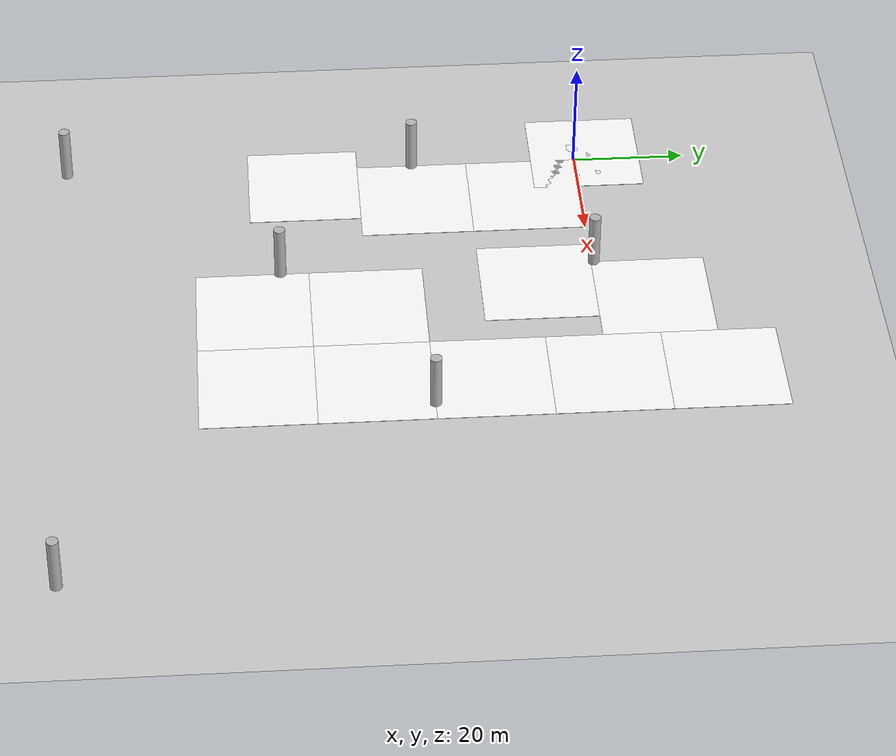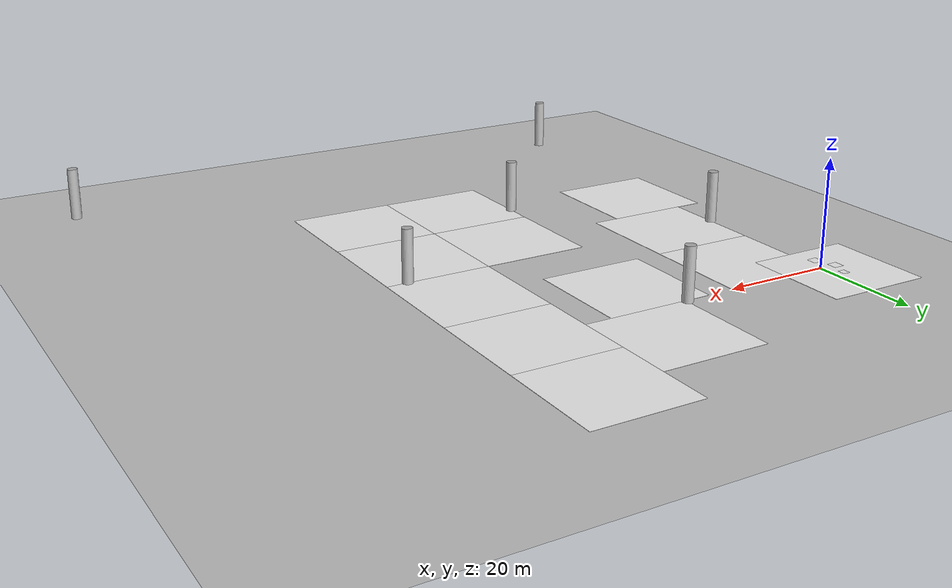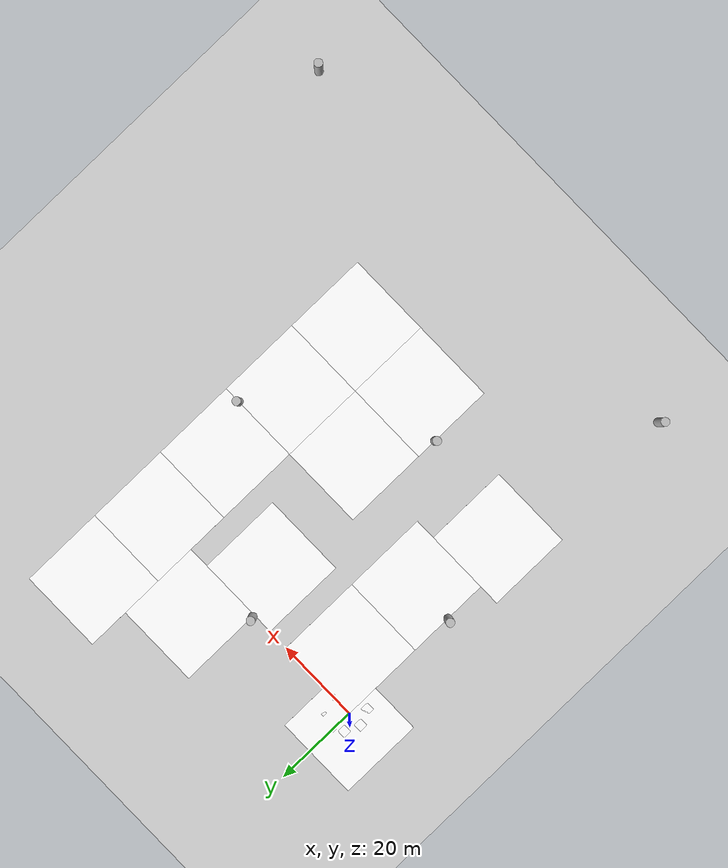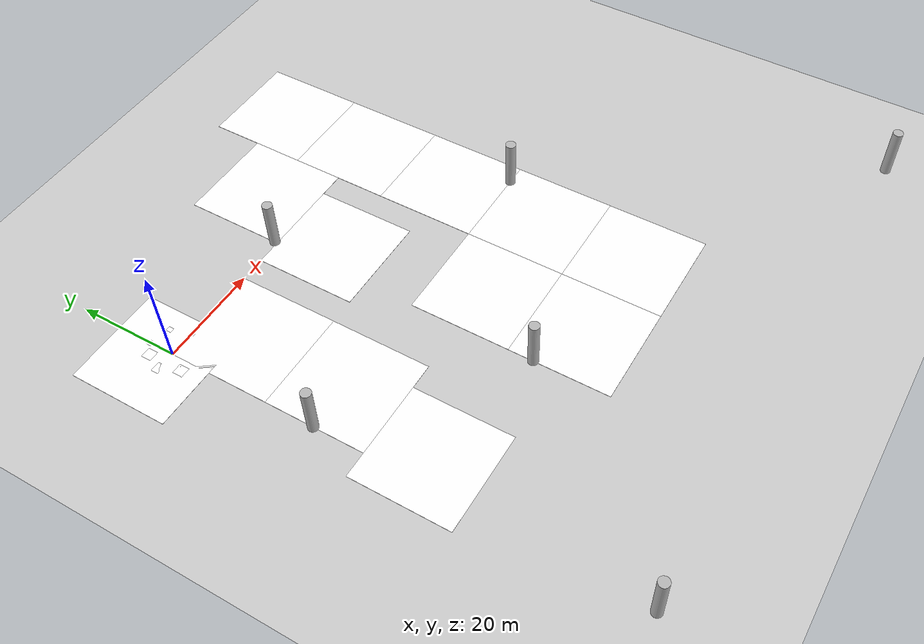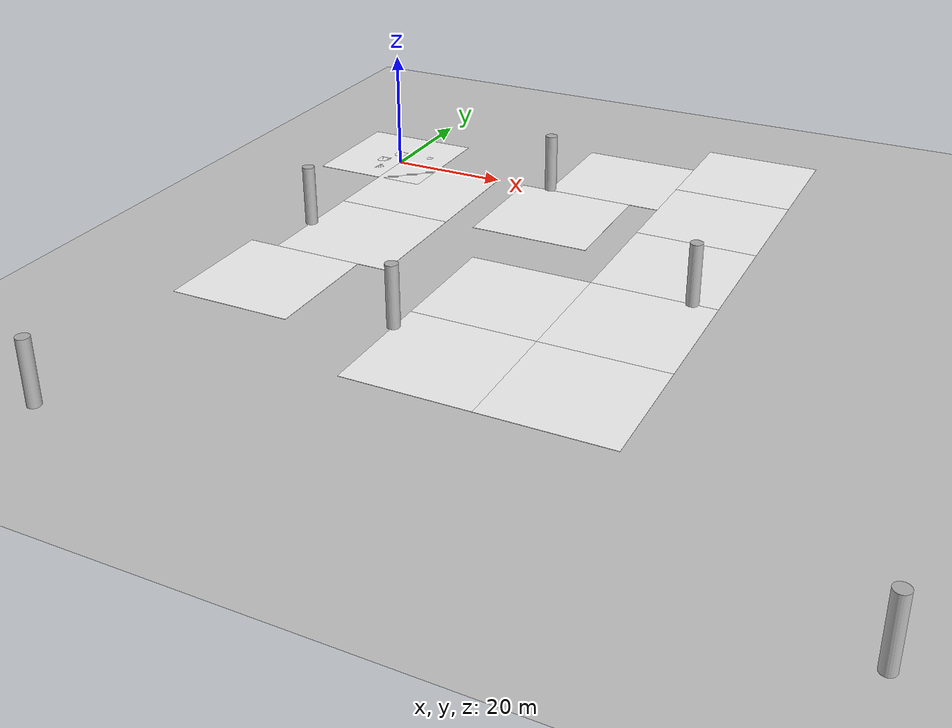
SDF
<sdf version="1.6">
 <world name="default">
  <physics type="ode">
   <real_time_factor>1</real_time_factor>
   <ode>
    <solver><type>quick</type><iters>100</iters><sor>1.0</sor></solver>
    <constraints>
     <cfm>0.0</cfm>
     <erp>0.2</erp>
     <contact_max_correcting_vel>0.1</contact_max_correcting_vel>
     <contact_surface_layer>0.0</contact_surface_layer>
    </constraints>
   </ode>
   <real_time_update_rate>0</real_time_update_rate>
   <max_step_size>0.0020</max_step_size>
  </physics>
  <gravity>0 0 -9.8</gravity>
  <include><uri>model://sun</uri><pose>0 0 0 0 1 1</pose></include>
  <model name="ground_plane">
   <static>true</static>
   <link name="link">
    <collision name="collision">
     <geometry><plane><normal>0 0 1</normal><size>500 250</size></plane></geometry>
     <surface><friction><ode><mu>100</mu><mu2>50</mu2></ode></friction></surface>
    </collision>
    <visual name="runway">
     <pose>000 0 0.004 0 0 0</pose>
     <cast_shadows>false</cast_shadows>
     <geometry><plane><normal>0 0 1</normal><size>400 45</size></plane></geometry>
     <material>
      <script><uri>file://media/materials/scripts/gazebo.material</uri><name>Gazebo/Runway</name></script>
     </material>
    </visual>
    <visual name="playground">
     <pose>000 0 0.009 0 0 0</pose>
     <cast_shadows>false</cast_shadows>
     <geometry><plane><normal>0 0 1</normal><size>10 5</size></plane></geometry>
     <material>
      <script><uri>file://media/materials/scripts/gazebo.material</uri><name>Gazebo/WoodFloor</name></script>
     </material>
    </visual>
    <visual name="grass">
     <pose>0 0 -0.1 0 0 0</pose>
     <cast_shadows>false</cast_shadows>
     <geometry><plane><normal>0 0 1</normal><size>500 250</size></plane></geometry>
     <material>
      <script><uri>file://media/materials/scripts/gazebo.material</uri><name>Gazebo/Grass</name></script>
     </material>
    </visual>
   </link>
  </model>
  <model name="T_zone">
   <include><uri>model:///Gazebo/T_zone</uri><pose>5 0 0 0 0 1.5</pose><name>"T_zone_1"</name></include>
  </model>
  <model name="T_zone">
   <include><uri>model:///Gazebo/T_zone</uri><pose>0 5 0 0 0 0</pose><name>"T_zone_2"</name></include>
  </model>
  <model name="T_zone">
   <include><uri>model:///Gazebo/T_zone</uri><pose>4 4 0 0 0 0</pose><name>"T_zone_3"</name></include>
  </model>
  <model name="Medium_NFZ_zone">
   <include>
    <uri>model:///Gazebo/Medium_NFZ_zone</uri>
    <pose>-2 -3.5 0 0 0 0</pose>
    <name>"Medium_NFZ_zone"</name>
   </include>
  </model>
  <model name="FOZ_zone">
   <include><uri>model:///Gazebo/FOZ_zone</uri><pose>-2 2 0 0 0 0</pose><name>"FOZ_zone"</name></include>
  </model>
  <model name="Medium_FOZ_zone">
   <include>
    <uri>model:///Gazebo/Medium_FOZ_zone</uri>
    <pose>-2 3.5 0 0 0 0</pose>
    <name>"Medium_FOZ_zone"</name>
   </include>
  </model>
  <model name="Medium_ELZ_zone">
   <include>
    <uri>model:///Gazebo/Medium_ELZ_zone</uri>
    <pose>-3.5 0 0 0 0 0</pose>
    <name>"Medium_ELZ_zone"</name>
   </include>
  </model>
  <model name="Obstacle_3">
   <include><uri>model:///Gazebo/Obstacle</uri><pose>106 -93 5 0 0 1</pose><name>"Obstacle_3"</name></include>
  </model>
  <model name="Obstacle_4">
   <include><uri>model:///Gazebo/Obstacle</uri><pose>-1 -93 5 0 0 1</pose><name>"Obstacle_4"</name></include>
  </model>
  <model name="Wall_1">
   <include><uri>model:///Gazebo/Obstacle</uri><pose>30 0.5 5 0 0 1.75</pose><name>"Wall_1"</name></include>
  </model>
  <model name="ELZ_zone4">
   <include><uri>model:///Gazebo/ELZ_zone</uri><pose>35 -10 0 0 0 0</pose><name>"ELZ_zone4"</name></include>
  </model>
  <model name="ELZ_zone">
   <include><uri>model:///Gazebo/ELZ_zone</uri><pose>60 0 0 0 0 0</pose><name>"ELZ_zone"</name></include>
  </model>
  <model name="NFZ_zone">
   <include><uri>model:///Gazebo/NFZ_zone</uri><pose>40 10 0 0 0 0</pose><name>"NFZ_zone"</name></include>
  </model>
  <model name="Wall_2">
   <include><uri>model:///Gazebo/Obstacle</uri><pose>66 -30 5 0 0 0.5</pose><name>"Wall_2"</name></include>
  </model>
  <model name="NFZ_zone2">
   <include><uri>model:///Gazebo/NFZ_zone</uri><pose>60 20 0 0 0 0</pose><name>"NFZ_zone2"</name></include>
  </model>
  <model name="NFZ_zone3">
   <include><uri>model:///Gazebo/NFZ_zone</uri><pose>60 -20 0 0 0 0</pose><name>"NFZ_zone3"</name></include>
  </model>
  <model name="NFZ_zone4">
   <include><uri>model:///Gazebo/NFZ_zone</uri><pose>60 -40 0 0 0 0</pose><name>"NFZ_zone4"</name></include>
  </model>
  <model name="ELZ_zone2">
   <include><uri>model:///Gazebo/ELZ_zone</uri><pose>60 -60 0 0 0 0</pose><name>"ELZ_zone2"</name></include>
  </model>
  <model name="Wall_3">
   <include><uri>model:///Gazebo/Obstacle</uri><pose>30 -55 5 0 0 1.75</pose><name>"Wall_3"</name></include>
  </model>
  <model name="ELZ_zone5">
   <include><uri>model:///Gazebo/ELZ_zone</uri><pose>40 -40 0 0 0 0</pose><name>"ELZ_zone5"</name></include>
  </model>
  <model name="NFZ_zone5">
   <include><uri>model:///Gazebo/NFZ_zone</uri><pose>40 -60 0 0 0 0</pose><name>"NFZ_zone5"</name></include>
  </model>
  <model name="ELZ_zone3">
   <include><uri>model:///Gazebo/ELZ_zone</uri><pose>5 -50 0 0 0 0</pose><name>"ELZ_zone3"</name></include>
  </model>
  <model name="Wall_4">
   <include><uri>model:///Gazebo/Obstacle</uri><pose>0 -30 5 0 0 0.25</pose><name>"Wall_4"</name></include>
  </model>
  <model name="ELZ_zone6">
   <include><uri>model:///Gazebo/ELZ_zone</uri><pose>10 -10 0 0 0 0</pose><name>"ELZ_zone6"</name></include>
  </model>
  <model name="NFZ_zone6">
   <include><uri>model:///Gazebo/NFZ_zone</uri><pose>10 -30 0 0 0 0</pose><name>"NFZ_zone6"</name></include>
  </model>
  <model name="RR_zone"><include><uri>model:///Gazebo/RR_zone</uri><name>"RR_zone"</name></include></model>
  <wind><linear_velocity>0 0 0</linear_velocity></wind>
  <plugin name="wind" filename="libWindPlugin.so">
   <horizontal>
    <magnitude>
     <time_for_rise>10</time_for_rise>
     <sin><amplitude_percent>0.05</amplitude_percent><period>60</period></sin>
     <noise type="gaussian"><mean>0</mean><stddev>0.0002</stddev></noise>
    </magnitude>
    <direction>
     <time_for_rise>30</time_for_rise>
     <sin><amplitude>5</amplitude><period>20</period></sin>
     <noise type="gaussian"><mean>0</mean><stddev>0.03</stddev></noise>
    </direction>
   </horizontal>
   <vertical><noise type="gaussian"><mean>0</mean><stddev>0.03</stddev></noise></vertical>
  </plugin>
 </world>
</sdf>

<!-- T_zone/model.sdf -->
<sdf version='1.6'>
  <model name='T_zone'>
    <pose> 0 0 0 0 -0 0</pose>
    <static>True</static>
    <link name='T_zone_link'>
      <collision name='T_zone_link_Collision'>
        <pose>0 0 0 0 -0 0</pose>
        <geometry>
          <box>
            <size>1 1 0.05</size>
          </box>
        </geometry>
        <surface>
            <friction>
              <ode>
                <mu>100</mu>
                <mu2>50</mu2>
              </ode>
            </friction>
          </surface>
      </collision>
      <visual name='T_zone_link_Visual'>
        <pose>0 0 0 0 -0 0</pose>
        <geometry>
          <box>
            <size>1 1 0.05</size>
          </box>
        </geometry>
        <scale>1 1 1</scale>
        <material>
          <script>
              <uri>model:///Gazebo/T_zone/materials/scripts</uri>
              <uri>model:///Gazebo/T_zone/materials/textures</uri>
              <name>T_zone/Diffuse</name>
          </script>
          <ambient>1 1 1 1</ambient>
        </material>
        <meta>
          <layer>0</layer>
        </meta>
      </visual>
    </link>
  </model>
</sdf>

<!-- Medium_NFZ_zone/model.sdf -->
<sdf version='1.6'>
  <model name='Medium_NFZ_zone'>
    <pose> 0 0 0 0 -0 0</pose>
    <static>True</static>
    <link name='Medium_NFZ_zone_link'>
      <collision name='Medium_NFZ_zone_link_Collision'>
        <pose>0 0 0 0 -0 0</pose>
        <geometry>
          <box>
            <size>2 2 0.05</size>
          </box>
        </geometry>
        <surface>
            <friction>
              <ode>
                <mu>100</mu>
                <mu2>50</mu2>
              </ode>
            </friction>
          </surface>
      </collision>
      <visual name='Medium_NFZ_zone_link_Visual'>
        <pose>0 0 0 0 -0 0</pose>
        <geometry>
          <box>
            <size>2 2 0.05</size>
          </box>
        </geometry>
        <scale>1 1 1</scale>
        <material>
          <script>
              <uri>model:///Gazebo/Medium_NFZ_zone/materials/scripts</uri>
              <uri>model:///Gazebo/Medium_NFZ_zone/materials/textures</uri>
              <name>NFZ_zone/Diffuse</name>
          </script>
          <ambient>1 1 1 1</ambient>
        </material>
        <meta>
          <layer>0</layer>
        </meta>
      </visual>
    </link>
  </model>
</sdf>

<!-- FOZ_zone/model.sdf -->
<sdf version='1.6'>
  <model name='FOZ_zone'>
    <pose> 0 0 0 0 -0 0</pose>
    <static>True</static>
    <link name='FOZ_zone_link'>
      <collision name='FOZ_zone_link_Collision'>
        <pose>0 0 0 0 -0 0</pose>
        <geometry>
          <box>
            <size>20 20 0.05</size>
          </box>
        </geometry>
        <surface>
            <friction>
              <ode>
                <mu>100</mu>
                <mu2>50</mu2>
              </ode>
            </friction>
          </surface>
      </collision>
      <visual name='FOZ_zone_link_Visual'>
        <pose>0 0 0 0 -0 0</pose>
        <geometry>
          <box>
            <size>20 20 0.05</size>
          </box>
        </geometry>
        <scale>1 1 1</scale>
        <material>
          <script>
              <uri>model:///Gazebo/FOZ_zone/materials/scripts</uri>
              <uri>model:///Gazebo/FOZ_zone/materials/textures</uri>
              <name>FOZ_zone/Diffuse</name>
          </script>
          <ambient>1 1 1 1</ambient>
        </material>
        <meta>
          <layer>0</layer>
        </meta>
      </visual>
    </link>
  </model>
</sdf>

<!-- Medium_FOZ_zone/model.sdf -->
<sdf version='1.6'>
  <model name='Medium_FOZ_zone'>
    <pose> 0 0 0 0 -0 0</pose>
    <static>True</static>
    <link name='Medium_FOZ_zone_link'>
      <collision name='Medium_FOZ_zone_link_Collision'>
        <pose>0 0 0 0 -0 0</pose>
        <geometry>
          <box>
            <size>2 2 0.05</size>
          </box>
        </geometry>
        <surface>
            <friction>
              <ode>
                <mu>100</mu>
                <mu2>50</mu2>
              </ode>
            </friction>
          </surface>
      </collision>
      <visual name='Medium_FOZ_zone_link_Visual'>
        <pose>0 0 0 0 -0 0</pose>
        <geometry>
          <box>
            <size>2 2 0.05</size>
          </box>
        </geometry>
        <scale>1 1 1</scale>
        <material>
          <script>
              <uri>model:///Gazebo/Medium_FOZ_zone/materials/scripts</uri>
              <uri>model:///Gazebo/Medium_FOZ_zone/materials/textures</uri>
              <name>FOZ_zone/Diffuse</name>
          </script>
          <ambient>1 1 1 1</ambient>
        </material>
        <meta>
          <layer>0</layer>
        </meta>
      </visual>
    </link>
  </model>
</sdf>

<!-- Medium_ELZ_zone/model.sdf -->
<sdf version='1.6'>
  <model name='Medium_ELZ_zone'>
    <pose> 0 0 0 0 -0 0</pose>
    <static>True</static>
    <link name='Medium_ELZ_zone_link'>
      <collision name='Medium_ELZ_zone_link_Collision'>
        <pose>0 0 0 0 -0 0</pose>
        <geometry>
          <box>
            <size>2 2 0.05</size>
          </box>
        </geometry>
        <surface>
            <friction>
              <ode>
                <mu>100</mu>
                <mu2>50</mu2>
              </ode>
            </friction>
          </surface>
      </collision>
      <visual name='Medium_ELZ_zone_link_Visual'>
        <pose>0 0 0 0 -0 0</pose>
        <geometry>
          <box>
            <size>2 2 0.05</size>
          </box>
        </geometry>
        <scale>1 1 1</scale>
        <material>
          <script>
              <uri>model:///Gazebo/Medium_ELZ_zone/materials/scripts</uri>
              <uri>model:///Gazebo/Medium_ELZ_zone/materials/textures</uri>
              <name>ELZ_zone/Diffuse</name>
          </script>
          <ambient>1 1 1 1</ambient>
        </material>
        <meta>
          <layer>0</layer>
        </meta>
      </visual>
    </link>
  </model>
</sdf>

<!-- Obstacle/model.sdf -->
<sdf version='1.6'>
  <model name='Obstacle'>
    <static>1</static>
    <link name='Obstacle_link'>
      <pose>0 0 0 0 0 0</pose>
      <self_collide>0</self_collide>
      <kinematic>0</kinematic>
      <gravity>1</gravity>
      <visual name='Obstacle_link_visual'>
        <geometry>
          <cylinder>
            <radius>1</radius>
            <length>10</length>
          </cylinder>
        </geometry>
        <material>
          <script>
              <uri>model:///Gazebo/Obstacle/materials/scripts</uri>
              <uri>model:///Gazebo/Obstacle/materials/textures</uri>
              <name>Obstacle/Diffuse</name>
          </script>
          <shader type='vertex'>
            <normal_map>__default__</normal_map>
          </shader>
        </material>
        <pose>0 0 0 0 -0 0</pose>
        <transparency>0</transparency>
        <cast_shadows>1</cast_shadows>
      </visual>
      <collision name='Obstacle_link_collision'>
        <laser_retro>0</laser_retro>
        <max_contacts>10</max_contacts>
        <pose>0 0 0 0 -0 0</pose>
        <geometry>
          <cylinder>
            <radius>1</radius>
            <length>10</length>
          </cylinder>
        </geometry>
        <surface>
          <friction>
            <ode>
              <mu>1</mu>
              <mu2>1</mu2>
              <fdir1>0 0 0</fdir1>
              <slip1>0</slip1>
              <slip2>0</slip2>
            </ode>
            <torsional>
              <coefficient>1</coefficient>
              <patch_radius>0</patch_radius>
              <surface_radius>0</surface_radius>
              <use_patch_radius>1</use_patch_radius>
              <ode>
                <slip>0</slip>
              </ode>
            </torsional>
          </friction>
          <bounce>
            <restitution_coefficient>0</restitution_coefficient>
            <threshold>1e+06</threshold>
          </bounce>
          <contact>
            <collide_without_contact>0</collide_without_contact>
            <collide_without_contact_bitmask>1</collide_without_contact_bitmask>
            <collide_bitmask>1</collide_bitmask>
            <ode>
              <soft_cfm>0</soft_cfm>
              <soft_erp>0.2</soft_erp>
              <kp>1e+13</kp>
              <kd>1</kd>
              <max_vel>0.01</max_vel>
              <min_depth>0</min_depth>
            </ode>
            <bullet>
              <split_impulse>1</split_impulse>
              <split_impulse_penetration_threshold>-0.01</split_impulse_penetration_threshold>
              <soft_cfm>0</soft_cfm>
              <soft_erp>0.2</soft_erp>
              <kp>1e+13</kp>
              <kd>1</kd>
            </bullet>
          </contact>
        </surface>
      </collision>
    </link>
    <allow_auto_disable>1</allow_auto_disable>
  </model>
</sdf>

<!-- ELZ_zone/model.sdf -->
<sdf version='1.6'>
  <model name='ELZ_zone'>
    <pose> 0 0 0 0 -0 0</pose>
    <static>True</static>
    <link name='ELZ_zone_link'>
      <collision name='ELZ_zone_link_Collision'>
        <pose>0 0 0 0 -0 0</pose>
        <geometry>
          <box>
            <size>20 20 0.05</size>
          </box>
        </geometry>
        <surface>
            <friction>
              <ode>
                <mu>100</mu>
                <mu2>50</mu2>
              </ode>
            </friction>
          </surface>
      </collision>
      <visual name='ELZ_zone_link_Visual'>
        <pose>0 0 0 0 -0 0</pose>
        <geometry>
          <box>
            <size>20 20 0.05</size>
          </box>
        </geometry>
        <scale>1 1 1</scale>
        <material>
          <script>
              <uri>model:///Gazebo/ELZ_zone/materials/scripts</uri>
              <uri>model:///Gazebo/ELZ_zone/materials/textures</uri>
              <name>ELZ_zone/Diffuse</name>
          </script>
          <ambient>1 1 1 1</ambient>
        </material>
        <meta>
          <layer>0</layer>
        </meta>
      </visual>
    </link>
  </model>
</sdf>

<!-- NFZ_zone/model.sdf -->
<sdf version='1.6'>
  <model name='NFZ_zone'>
    <pose> 0 0 0 0 -0 0</pose>
    <static>True</static>
    <link name='NFZ_zone_link'>
      <collision name='NFZ_zone_link_Collision'>
        <pose>0 0 0 0 -0 0</pose>
        <geometry>
          <box>
            <size>20 20 0.05</size>
          </box>
        </geometry>
        <surface>
            <friction>
              <ode>
                <mu>100</mu>
                <mu2>50</mu2>
              </ode>
            </friction>
          </surface>
      </collision>
      <visual name='NFZ_zone_link_Visual'>
        <pose>0 0 0 0 -0 0</pose>
        <geometry>
          <box>
            <size>20 20 0.05</size>
          </box>
        </geometry>
        <scale>1 1 1</scale>
        <material>
          <script>
              <uri>model:///Gazebo/NFZ_zone/materials/scripts</uri>
              <uri>model:///Gazebo/NFZ_zone/materials/textures</uri>
              <name>NFZ_zone/Diffuse</name>
          </script>
          <ambient>1 1 1 1</ambient>
        </material>
        <meta>
          <layer>0</layer>
        </meta>
      </visual>
    </link>
  </model>
</sdf>

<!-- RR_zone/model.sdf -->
<sdf version='1.6'>
  <model name='RR_zone'>
    <pose> 0 0 0 0 -0 0</pose>
    <static>True</static>
    <link name='RR_zone_link'>
      <collision name='RR_zone_link_Collision'>
        <pose>0 0 0 0 -0 0</pose>
        <geometry>
          <box>
            <size>0.15 0.15 0.05</size>
          </box>
        </geometry>
        <surface>
            <friction>
              <ode>
                <mu>100</mu>
                <mu2>50</mu2>
              </ode>
            </friction>
          </surface>
      </collision>
      <visual name='RR_zone_link_Visual'>
        <pose>0 0 0 0 -0 0</pose>
        <geometry>
          <box>
            <size>0.15 0.15 0.05</size>
          </box>
        </geometry>
        <scale>1 1 1</scale>
        <material>
          <script>
              <uri>model:///Gazebo/RR_zone/materials/scripts</uri>
              <uri>model:///Gazebo/RR_zone/materials/textures</uri>
              <name>RR_zone/Diffuse</name>
          </script>
          <ambient>1 1 1 1</ambient>
        </material>
        <meta>
          <layer>0</layer>
        </meta>
      </visual>
    </link>
  </model>
</sdf>
